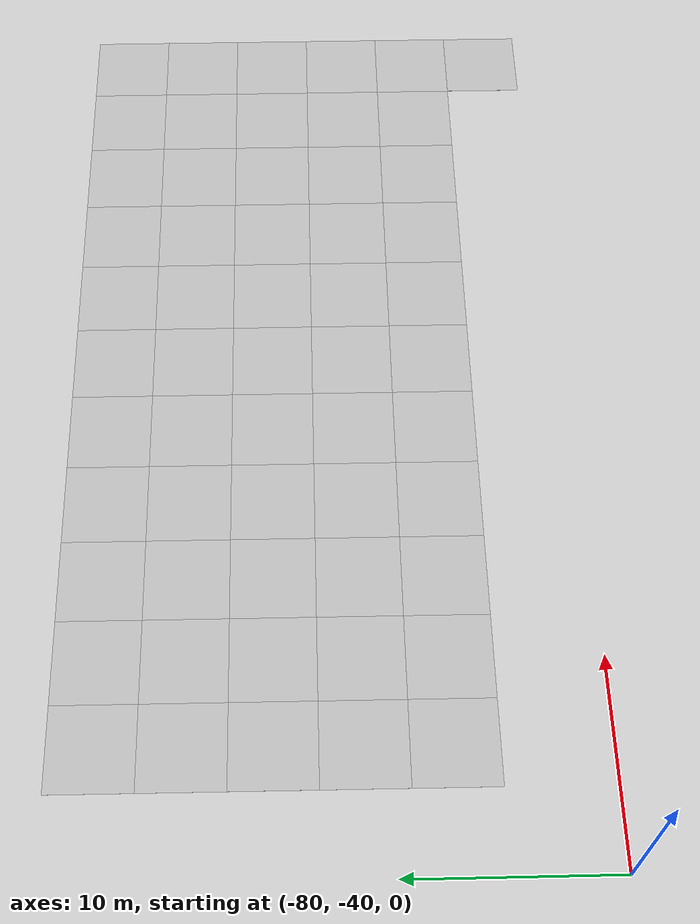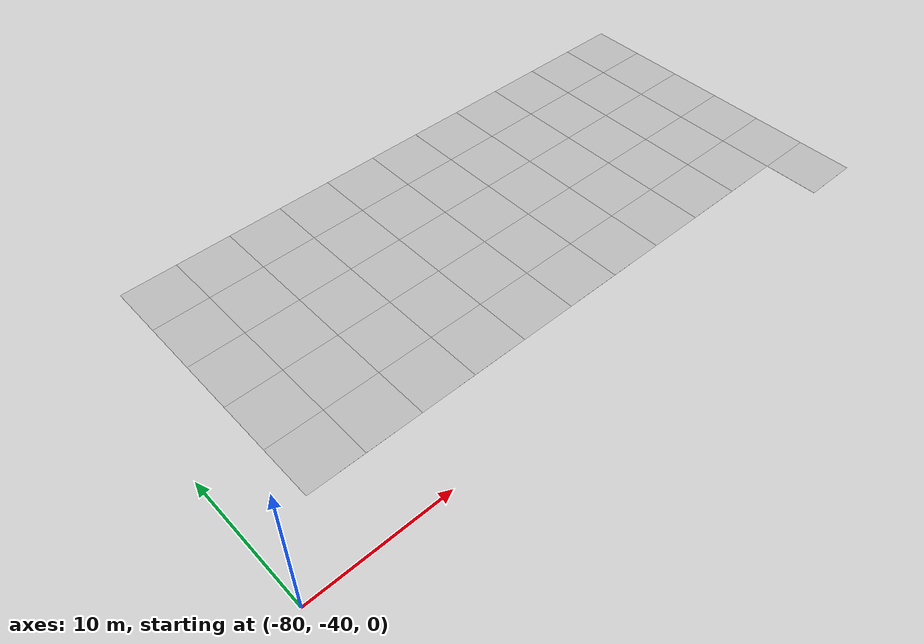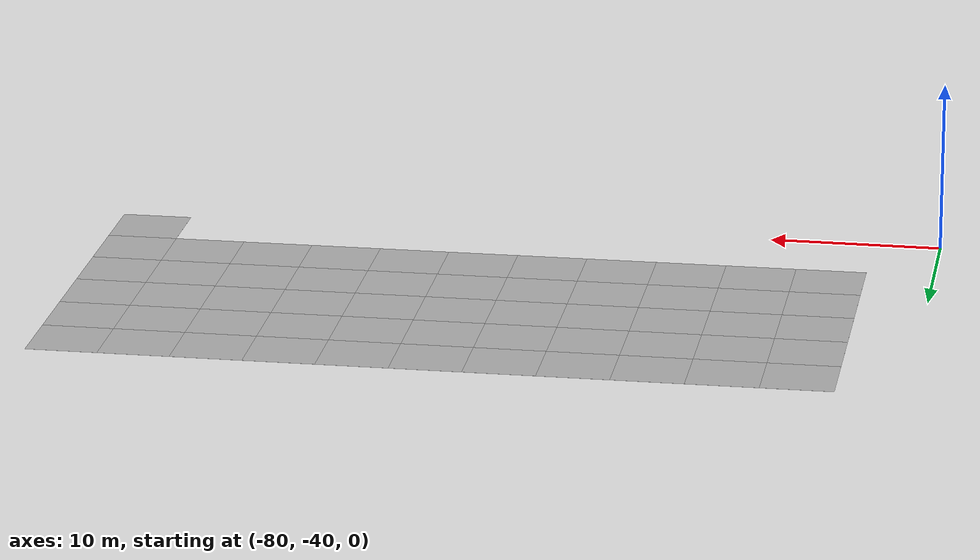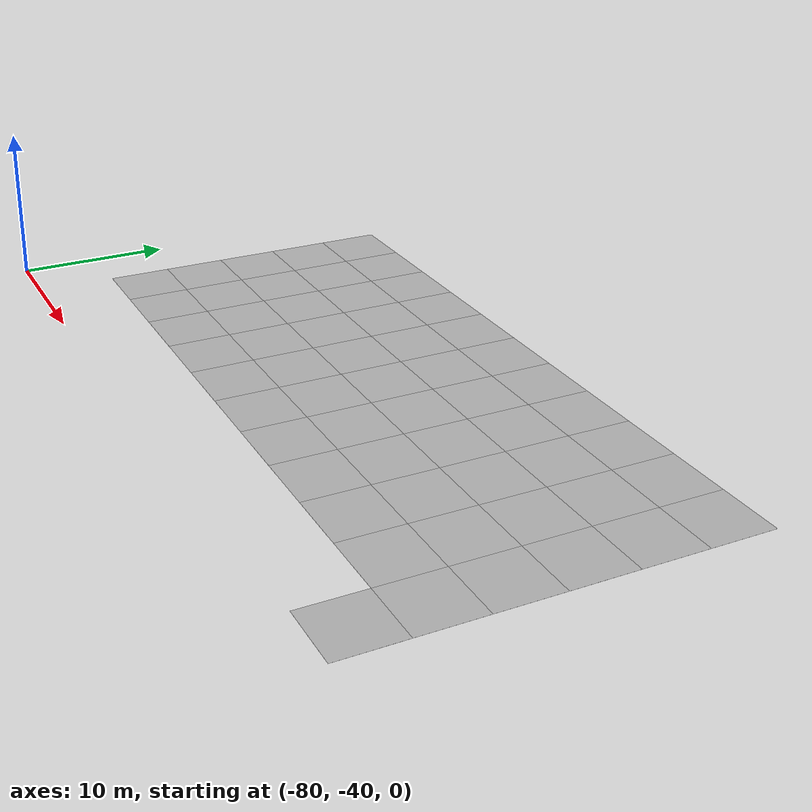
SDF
<sdf version="1.6">
 <world name="default">
  <model name="Tile/0-5">
   <static>1</static>
   <link name="link">
    <collision name="collision">
     <geometry><plane><normal>0 0 1</normal><size>4.096 4.096</size></plane></geometry>
     <surface><friction><ode><mu>100</mu><mu2>50</mu2></ode></friction></surface>
    </collision>
    <visual name="visual">
     <cast_shadows>0</cast_shadows>
     <geometry><plane><normal>0 0 1</normal><size>4.096 4.096</size></plane></geometry>
     <material>
      <script>
       <uri>file://materials/scripts</uri>
       <uri>file://materials/textures</uri>
       <name>Tile/5eab350b8220ac9944dbdfa4ac3288c7c17e24c3bf5df0dfcf6173d64dae00a1</name>
      </script>
     </material>
    </visual>
   </link>
   <pose>-74.02587300576776 -32.81610327529424 0 0 -0 0</pose>
  </model>
  <model name="Tile/0-6">
   <static>1</static>
   <link name="link">
    <collision name="collision">
     <geometry><plane><normal>0 0 1</normal><size>4.096 4.096</size></plane></geometry>
     <surface><friction><ode><mu>100</mu><mu2>50</mu2></ode></friction></surface>
    </collision>
    <visual name="visual">
     <cast_shadows>0</cast_shadows>
     <geometry><plane><normal>0 0 1</normal><size>4.096 4.096</size></plane></geometry>
     <material>
      <script>
       <uri>file://materials/scripts</uri>
       <uri>file://materials/textures</uri>
       <name>Tile/5eab350b8220ac9944dbdfa4ac3288c7c17e24c3bf5df0dfcf6173d64dae00a1</name>
      </script>
     </material>
    </visual>
   </link>
   <pose>-74.02587300576776 -28.72010327529424 0 0 -0 0</pose>
  </model>
  <model name="Tile/0-7">
   <static>1</static>
   <link name="link">
    <collision name="collision">
     <geometry><plane><normal>0 0 1</normal><size>4.096 4.096</size></plane></geometry>
     <surface><friction><ode><mu>100</mu><mu2>50</mu2></ode></friction></surface>
    </collision>
    <visual name="visual">
     <cast_shadows>0</cast_shadows>
     <geometry><plane><normal>0 0 1</normal><size>4.096 4.096</size></plane></geometry>
     <material>
      <script>
       <uri>file://materials/scripts</uri>
       <uri>file://materials/textures</uri>
       <name>Tile/5eab350b8220ac9944dbdfa4ac3288c7c17e24c3bf5df0dfcf6173d64dae00a1</name>
      </script>
     </material>
    </visual>
   </link>
   <pose>-74.02587300576776 -24.62410327529424 0 0 -0 0</pose>
  </model>
  <model name="Tile/0-8">
   <static>1</static>
   <link name="link">
    <collision name="collision">
     <geometry><plane><normal>0 0 1</normal><size>4.096 4.096</size></plane></geometry>
     <surface><friction><ode><mu>100</mu><mu2>50</mu2></ode></friction></surface>
    </collision>
    <visual name="visual">
     <cast_shadows>0</cast_shadows>
     <geometry><plane><normal>0 0 1</normal><size>4.096 4.096</size></plane></geometry>
     <material>
      <script>
       <uri>file://materials/scripts</uri>
       <uri>file://materials/textures</uri>
       <name>Tile/5eab350b8220ac9944dbdfa4ac3288c7c17e24c3bf5df0dfcf6173d64dae00a1</name>
      </script>
     </material>
    </visual>
   </link>
   <pose>-74.02587300576776 -20.528103275294235 0 0 -0 0</pose>
  </model>
  <model name="Tile/0-9">
   <static>1</static>
   <link name="link">
    <collision name="collision">
     <geometry><plane><normal>0 0 1</normal><size>4.096 4.096</size></plane></geometry>
     <surface><friction><ode><mu>100</mu><mu2>50</mu2></ode></friction></surface>
    </collision>
    <visual name="visual">
     <cast_shadows>0</cast_shadows>
     <geometry><plane><normal>0 0 1</normal><size>4.096 4.096</size></plane></geometry>
     <material>
      <script>
       <uri>file://materials/scripts</uri>
       <uri>file://materials/textures</uri>
       <name>Tile/5eab350b8220ac9944dbdfa4ac3288c7c17e24c3bf5df0dfcf6173d64dae00a1</name>
      </script>
     </material>
    </visual>
   </link>
   <pose>-74.02587300576776 -16.43210327529424 0 0 -0 0</pose>
  </model>
  <model name="Tile/1-5">
   <static>1</static>
   <link name="link">
    <collision name="collision">
     <geometry><plane><normal>0 0 1</normal><size>4.096 4.096</size></plane></geometry>
     <surface><friction><ode><mu>100</mu><mu2>50</mu2></ode></friction></surface>
    </collision>
    <visual name="visual">
     <cast_shadows>0</cast_shadows>
     <geometry><plane><normal>0 0 1</normal><size>4.096 4.096</size></plane></geometry>
     <material>
      <script>
       <uri>file://materials/scripts</uri>
       <uri>file://materials/textures</uri>
       <name>Tile/bef20f82cdd3d5baccce5dc0a13bc71e3c4d3d878aea6c0974d6655b88d51603</name>
      </script>
     </material>
    </visual>
   </link>
   <pose>-69.92987300576776 -32.81610327529424 0 0 -0 0</pose>
  </model>
  <model name="Tile/1-6">
   <static>1</static>
   <link name="link">
    <collision name="collision">
     <geometry><plane><normal>0 0 1</normal><size>4.096 4.096</size></plane></geometry>
     <surface><friction><ode><mu>100</mu><mu2>50</mu2></ode></friction></surface>
    </collision>
    <visual name="visual">
     <cast_shadows>0</cast_shadows>
     <geometry><plane><normal>0 0 1</normal><size>4.096 4.096</size></plane></geometry>
     <material>
      <script>
       <uri>file://materials/scripts</uri>
       <uri>file://materials/textures</uri>
       <name>Tile/5eab350b8220ac9944dbdfa4ac3288c7c17e24c3bf5df0dfcf6173d64dae00a1</name>
      </script>
     </material>
    </visual>
   </link>
   <pose>-69.92987300576776 -28.72010327529424 0 0 -0 0</pose>
  </model>
  <model name="Tile/1-7">
   <static>1</static>
   <link name="link">
    <collision name="collision">
     <geometry><plane><normal>0 0 1</normal><size>4.096 4.096</size></plane></geometry>
     <surface><friction><ode><mu>100</mu><mu2>50</mu2></ode></friction></surface>
    </collision>
    <visual name="visual">
     <cast_shadows>0</cast_shadows>
     <geometry><plane><normal>0 0 1</normal><size>4.096 4.096</size></plane></geometry>
     <material>
      <script>
       <uri>file://materials/scripts</uri>
       <uri>file://materials/textures</uri>
       <name>Tile/5eab350b8220ac9944dbdfa4ac3288c7c17e24c3bf5df0dfcf6173d64dae00a1</name>
      </script>
     </material>
    </visual>
   </link>
   <pose>-69.92987300576776 -24.62410327529424 0 0 -0 0</pose>
  </model>
  <model name="Tile/1-8">
   <static>1</static>
   <link name="link">
    <collision name="collision">
     <geometry><plane><normal>0 0 1</normal><size>4.096 4.096</size></plane></geometry>
     <surface><friction><ode><mu>100</mu><mu2>50</mu2></ode></friction></surface>
    </collision>
    <visual name="visual">
     <cast_shadows>0</cast_shadows>
     <geometry><plane><normal>0 0 1</normal><size>4.096 4.096</size></plane></geometry>
     <material>
      <script>
       <uri>file://materials/scripts</uri>
       <uri>file://materials/textures</uri>
       <name>Tile/5eab350b8220ac9944dbdfa4ac3288c7c17e24c3bf5df0dfcf6173d64dae00a1</name>
      </script>
     </material>
    </visual>
   </link>
   <pose>-69.92987300576776 -20.528103275294235 0 0 -0 0</pose>
  </model>
  <model name="Tile/1-9">
   <static>1</static>
   <link name="link">
    <collision name="collision">
     <geometry><plane><normal>0 0 1</normal><size>4.096 4.096</size></plane></geometry>
     <surface><friction><ode><mu>100</mu><mu2>50</mu2></ode></friction></surface>
    </collision>
    <visual name="visual">
     <cast_shadows>0</cast_shadows>
     <geometry><plane><normal>0 0 1</normal><size>4.096 4.096</size></plane></geometry>
     <material>
      <script>
       <uri>file://materials/scripts</uri>
       <uri>file://materials/textures</uri>
       <name>Tile/5eab350b8220ac9944dbdfa4ac3288c7c17e24c3bf5df0dfcf6173d64dae00a1</name>
      </script>
     </material>
    </visual>
   </link>
   <pose>-69.92987300576776 -16.43210327529424 0 0 -0 0</pose>
  </model>
  <model name="Tile/2-5">
   <static>1</static>
   <link name="link">
    <collision name="collision">
     <geometry><plane><normal>0 0 1</normal><size>4.096 4.096</size></plane></geometry>
     <surface><friction><ode><mu>100</mu><mu2>50</mu2></ode></friction></surface>
    </collision>
    <visual name="visual">
     <cast_shadows>0</cast_shadows>
     <geometry><plane><normal>0 0 1</normal><size>4.096 4.096</size></plane></geometry>
     <material>
      <script>
       <uri>file://materials/scripts</uri>
       <uri>file://materials/textures</uri>
       <name>Tile/518b6961bb547202fd9efee7bd81965970aacfd3aa863cbcab949c5f7947569b</name>
      </script>
     </material>
    </visual>
   </link>
   <pose>-65.83387300576777 -32.81610327529424 0 0 -0 0</pose>
  </model>
  <model name="Tile/2-6">
   <static>1</static>
   <link name="link">
    <collision name="collision">
     <geometry><plane><normal>0 0 1</normal><size>4.096 4.096</size></plane></geometry>
     <surface><friction><ode><mu>100</mu><mu2>50</mu2></ode></friction></surface>
    </collision>
    <visual name="visual">
     <cast_shadows>0</cast_shadows>
     <geometry><plane><normal>0 0 1</normal><size>4.096 4.096</size></plane></geometry>
     <material>
      <script>
       <uri>file://materials/scripts</uri>
       <uri>file://materials/textures</uri>
       <name>Tile/5cfcbd6f833b705bda2c2ba7dccb202738695a96687d2659ea9c212d299d7115</name>
      </script>
     </material>
    </visual>
   </link>
   <pose>-65.83387300576777 -28.72010327529424 0 0 -0 0</pose>
  </model>
  <model name="Tile/2-7">
   <static>1</static>
   <link name="link">
    <collision name="collision">
     <geometry><plane><normal>0 0 1</normal><size>4.096 4.096</size></plane></geometry>
     <surface><friction><ode><mu>100</mu><mu2>50</mu2></ode></friction></surface>
    </collision>
    <visual name="visual">
     <cast_shadows>0</cast_shadows>
     <geometry><plane><normal>0 0 1</normal><size>4.096 4.096</size></plane></geometry>
     <material>
      <script>
       <uri>file://materials/scripts</uri>
       <uri>file://materials/textures</uri>
       <name>Tile/245a53eaf3db409cd6b239ef844614c21767c09347fcd66d938a2f493ae21ebe</name>
      </script>
     </material>
    </visual>
   </link>
   <pose>-65.83387300576777 -24.62410327529424 0 0 -0 0</pose>
  </model>
  <model name="Tile/2-8">
   <static>1</static>
   <link name="link">
    <collision name="collision">
     <geometry><plane><normal>0 0 1</normal><size>4.096 4.096</size></plane></geometry>
     <surface><friction><ode><mu>100</mu><mu2>50</mu2></ode></friction></surface>
    </collision>
    <visual name="visual">
     <cast_shadows>0</cast_shadows>
     <geometry><plane><normal>0 0 1</normal><size>4.096 4.096</size></plane></geometry>
     <material>
      <script>
       <uri>file://materials/scripts</uri>
       <uri>file://materials/textures</uri>
       <name>Tile/5eab350b8220ac9944dbdfa4ac3288c7c17e24c3bf5df0dfcf6173d64dae00a1</name>
      </script>
     </material>
    </visual>
   </link>
   <pose>-65.83387300576777 -20.528103275294235 0 0 -0 0</pose>
  </model>
  <model name="Tile/2-9">
   <static>1</static>
   <link name="link">
    <collision name="collision">
     <geometry><plane><normal>0 0 1</normal><size>4.096 4.096</size></plane></geometry>
     <surface><friction><ode><mu>100</mu><mu2>50</mu2></ode></friction></surface>
    </collision>
    <visual name="visual">
     <cast_shadows>0</cast_shadows>
     <geometry><plane><normal>0 0 1</normal><size>4.096 4.096</size></plane></geometry>
     <material>
      <script>
       <uri>file://materials/scripts</uri>
       <uri>file://materials/textures</uri>
       <name>Tile/5eab350b8220ac9944dbdfa4ac3288c7c17e24c3bf5df0dfcf6173d64dae00a1</name>
      </script>
     </material>
    </visual>
   </link>
   <pose>-65.83387300576777 -16.43210327529424 0 0 -0 0</pose>
  </model>
  <model name="Tile/3-5">
   <static>1</static>
   <link name="link">
    <collision name="collision">
     <geometry><plane><normal>0 0 1</normal><size>4.096 4.096</size></plane></geometry>
     <surface><friction><ode><mu>100</mu><mu2>50</mu2></ode></friction></surface>
    </collision>
    <visual name="visual">
     <cast_shadows>0</cast_shadows>
     <geometry><plane><normal>0 0 1</normal><size>4.096 4.096</size></plane></geometry>
     <material>
      <script>
       <uri>file://materials/scripts</uri>
       <uri>file://materials/textures</uri>
       <name>Tile/5eab350b8220ac9944dbdfa4ac3288c7c17e24c3bf5df0dfcf6173d64dae00a1</name>
      </script>
     </material>
    </visual>
   </link>
   <pose>-61.73787300576777 -32.81610327529424 0 0 -0 0</pose>
  </model>
  <model name="Tile/3-6">
   <static>1</static>
   <link name="link">
    <collision name="collision">
     <geometry><plane><normal>0 0 1</normal><size>4.096 4.096</size></plane></geometry>
     <surface><friction><ode><mu>100</mu><mu2>50</mu2></ode></friction></surface>
    </collision>
    <visual name="visual">
     <cast_shadows>0</cast_shadows>
     <geometry><plane><normal>0 0 1</normal><size>4.096 4.096</size></plane></geometry>
     <material>
      <script>
       <uri>file://materials/scripts</uri>
       <uri>file://materials/textures</uri>
       <name>Tile/6b770577011c089c4e84eb5bd05d657700045482b5e6fd3c39f7793a9b04bbc1</name>
      </script>
     </material>
    </visual>
   </link>
   <pose>-61.73787300576777 -28.72010327529424 0 0 -0 0</pose>
  </model>
  <model name="Tile/3-7">
   <static>1</static>
   <link name="link">
    <collision name="collision">
     <geometry><plane><normal>0 0 1</normal><size>4.096 4.096</size></plane></geometry>
     <surface><friction><ode><mu>100</mu><mu2>50</mu2></ode></friction></surface>
    </collision>
    <visual name="visual">
     <cast_shadows>0</cast_shadows>
     <geometry><plane><normal>0 0 1</normal><size>4.096 4.096</size></plane></geometry>
     <material>
      <script>
       <uri>file://materials/scripts</uri>
       <uri>file://materials/textures</uri>
       <name>Tile/34a6189ac8d39fd8d3d2dcb4013038d80a6ebc6924422e81d8ef52bbcfac49f7</name>
      </script>
     </material>
    </visual>
   </link>
   <pose>-61.73787300576777 -24.62410327529424 0 0 -0 0</pose>
  </model>
  <model name="Tile/3-8">
   <static>1</static>
   <link name="link">
    <collision name="collision">
     <geometry><plane><normal>0 0 1</normal><size>4.096 4.096</size></plane></geometry>
     <surface><friction><ode><mu>100</mu><mu2>50</mu2></ode></friction></surface>
    </collision>
    <visual name="visual">
     <cast_shadows>0</cast_shadows>
     <geometry><plane><normal>0 0 1</normal><size>4.096 4.096</size></plane></geometry>
     <material>
      <script>
       <uri>file://materials/scripts</uri>
       <uri>file://materials/textures</uri>
       <name>Tile/3c720c26f9521c0b4f141d493ba461cbd7f9d1d3b3fb96bb40d2f167b9510341</name>
      </script>
     </material>
    </visual>
   </link>
   <pose>-61.73787300576777 -20.528103275294235 0 0 -0 0</pose>
  </model>
  <model name="Tile/3-9">
   <static>1</static>
   <link name="link">
    <collision name="collision">
     <geometry><plane><normal>0 0 1</normal><size>4.096 4.096</size></plane></geometry>
     <surface><friction><ode><mu>100</mu><mu2>50</mu2></ode></friction></surface>
    </collision>
    <visual name="visual">
     <cast_shadows>0</cast_shadows>
     <geometry><plane><normal>0 0 1</normal><size>4.096 4.096</size></plane></geometry>
     <material>
      <script>
       <uri>file://materials/scripts</uri>
       <uri>file://materials/textures</uri>
       <name>Tile/5eab350b8220ac9944dbdfa4ac3288c7c17e24c3bf5df0dfcf6173d64dae00a1</name>
      </script>
     </material>
    </visual>
   </link>
   <pose>-61.73787300576777 -16.43210327529424 0 0 -0 0</pose>
  </model>
  <model name="Tile/4-5">
   <static>1</static>
   <link name="link">
    <collision name="collision">
     <geometry><plane><normal>0 0 1</normal><size>4.096 4.096</size></plane></geometry>
     <surface><friction><ode><mu>100</mu><mu2>50</mu2></ode></friction></surface>
    </collision>
    <visual name="visual">
     <cast_shadows>0</cast_shadows>
     <geometry><plane><normal>0 0 1</normal><size>4.096 4.096</size></plane></geometry>
     <material>
      <script>
       <uri>file://materials/scripts</uri>
       <uri>file://materials/textures</uri>
       <name>Tile/5eab350b8220ac9944dbdfa4ac3288c7c17e24c3bf5df0dfcf6173d64dae00a1</name>
      </script>
     </material>
    </visual>
   </link>
   <pose>-57.64187300576776 -32.81610327529424 0 0 -0 0</pose>
  </model>
  <model name="Tile/4-6">
   <static>1</static>
   <link name="link">
    <collision name="collision">
     <geometry><plane><normal>0 0 1</normal><size>4.096 4.096</size></plane></geometry>
     <surface><friction><ode><mu>100</mu><mu2>50</mu2></ode></friction></surface>
    </collision>
    <visual name="visual">
     <cast_shadows>0</cast_shadows>
     <geometry><plane><normal>0 0 1</normal><size>4.096 4.096</size></plane></geometry>
     <material>
      <script>
       <uri>file://materials/scripts</uri>
       <uri>file://materials/textures</uri>
       <name>Tile/5eab350b8220ac9944dbdfa4ac3288c7c17e24c3bf5df0dfcf6173d64dae00a1</name>
      </script>
     </material>
    </visual>
   </link>
   <pose>-57.64187300576776 -28.72010327529424 0 0 -0 0</pose>
  </model>
  <model name="Tile/4-7">
   <static>1</static>
   <link name="link">
    <collision name="collision">
     <geometry><plane><normal>0 0 1</normal><size>4.096 4.096</size></plane></geometry>
     <surface><friction><ode><mu>100</mu><mu2>50</mu2></ode></friction></surface>
    </collision>
    <visual name="visual">
     <cast_shadows>0</cast_shadows>
     <geometry><plane><normal>0 0 1</normal><size>4.096 4.096</size></plane></geometry>
     <material>
      <script>
       <uri>file://materials/scripts</uri>
       <uri>file://materials/textures</uri>
       <name>Tile/5eab350b8220ac9944dbdfa4ac3288c7c17e24c3bf5df0dfcf6173d64dae00a1</name>
      </script>
     </material>
    </visual>
   </link>
   <pose>-57.64187300576776 -24.62410327529424 0 0 -0 0</pose>
  </model>
  <model name="Tile/4-8">
   <static>1</static>
   <link name="link">
    <collision name="collision">
     <geometry><plane><normal>0 0 1</normal><size>4.096 4.096</size></plane></geometry>
     <surface><friction><ode><mu>100</mu><mu2>50</mu2></ode></friction></surface>
    </collision>
    <visual name="visual">
     <cast_shadows>0</cast_shadows>
     <geometry><plane><normal>0 0 1</normal><size>4.096 4.096</size></plane></geometry>
     <material>
      <script>
       <uri>file://materials/scripts</uri>
       <uri>file://materials/textures</uri>
       <name>Tile/257003cc4d9d59eb855dba1a593f6e13bb0672be1b6eb3444d9a669a07a19780</name>
      </script>
     </material>
    </visual>
   </link>
   <pose>-57.64187300576776 -20.528103275294235 0 0 -0 0</pose>
  </model>
  <model name="Tile/4-9">
   <static>1</static>
   <link name="link">
    <collision name="collision">
     <geometry><plane><normal>0 0 1</normal><size>4.096 4.096</size></plane></geometry>
     <surface><friction><ode><mu>100</mu><mu2>50</mu2></ode></friction></surface>
    </collision>
    <visual name="visual">
     <cast_shadows>0</cast_shadows>
     <geometry><plane><normal>0 0 1</normal><size>4.096 4.096</size></plane></geometry>
     <material>
      <script>
       <uri>file://materials/scripts</uri>
       <uri>file://materials/textures</uri>
       <name>Tile/df8fdec2a40b22a03987a98c70c392184738e617aff91055d1802ed4957272be</name>
      </script>
     </material>
    </visual>
   </link>
   <pose>-57.64187300576776 -16.43210327529424 0 0 -0 0</pose>
  </model>
  <model name="Tile/5-5">
   <static>1</static>
   <link name="link">
    <collision name="collision">
     <geometry><plane><normal>0 0 1</normal><size>4.096 4.096</size></plane></geometry>
     <surface><friction><ode><mu>100</mu><mu2>50</mu2></ode></friction></surface>
    </collision>
    <visual name="visual">
     <cast_shadows>0</cast_shadows>
     <geometry><plane><normal>0 0 1</normal><size>4.096 4.096</size></plane></geometry>
     <material>
      <script>
       <uri>file://materials/scripts</uri>
       <uri>file://materials/textures</uri>
       <name>Tile/5eab350b8220ac9944dbdfa4ac3288c7c17e24c3bf5df0dfcf6173d64dae00a1</name>
      </script>
     </material>
    </visual>
   </link>
   <pose>-53.54587300576777 -32.81610327529424 0 0 -0 0</pose>
  </model>
  <model name="Tile/5-6">
   <static>1</static>
   <link name="link">
    <collision name="collision">
     <geometry><plane><normal>0 0 1</normal><size>4.096 4.096</size></plane></geometry>
     <surface><friction><ode><mu>100</mu><mu2>50</mu2></ode></friction></surface>
    </collision>
    <visual name="visual">
     <cast_shadows>0</cast_shadows>
     <geometry><plane><normal>0 0 1</normal><size>4.096 4.096</size></plane></geometry>
     <material>
      <script>
       <uri>file://materials/scripts</uri>
       <uri>file://materials/textures</uri>
       <name>Tile/5eab350b8220ac9944dbdfa4ac3288c7c17e24c3bf5df0dfcf6173d64dae00a1</name>
      </script>
     </material>
    </visual>
   </link>
   <pose>-53.54587300576777 -28.72010327529424 0 0 -0 0</pose>
  </model>
  <model name="Tile/5-7">
   <static>1</static>
   <link name="link">
    <collision name="collision">
     <geometry><plane><normal>0 0 1</normal><size>4.096 4.096</size></plane></geometry>
     <surface><friction><ode><mu>100</mu><mu2>50</mu2></ode></friction></surface>
    </collision>
    <visual name="visual">
     <cast_shadows>0</cast_shadows>
     <geometry><plane><normal>0 0 1</normal><size>4.096 4.096</size></plane></geometry>
     <material>
      <script>
       <uri>file://materials/scripts</uri>
       <uri>file://materials/textures</uri>
       <name>Tile/5eab350b8220ac9944dbdfa4ac3288c7c17e24c3bf5df0dfcf6173d64dae00a1</name>
      </script>
     </material>
    </visual>
   </link>
   <pose>-53.54587300576777 -24.62410327529424 0 0 -0 0</pose>
  </model>
  <model name="Tile/5-8">
   <static>1</static>
   <link name="link">
    <collision name="collision">
     <geometry><plane><normal>0 0 1</normal><size>4.096 4.096</size></plane></geometry>
     <surface><friction><ode><mu>100</mu><mu2>50</mu2></ode></friction></surface>
    </collision>
    <visual name="visual">
     <cast_shadows>0</cast_shadows>
     <geometry><plane><normal>0 0 1</normal><size>4.096 4.096</size></plane></geometry>
     <material>
      <script>
       <uri>file://materials/scripts</uri>
       <uri>file://materials/textures</uri>
       <name>Tile/c538d90ff08106b9bb66fdeee04f00c9e2af0226b396c58ec03e15e4201825c3</name>
      </script>
     </material>
    </visual>
   </link>
   <pose>-53.54587300576777 -20.528103275294235 0 0 -0 0</pose>
  </model>
  <model name="Tile/5-9">
   <static>1</static>
   <link name="link">
    <collision name="collision">
     <geometry><plane><normal>0 0 1</normal><size>4.096 4.096</size></plane></geometry>
     <surface><friction><ode><mu>100</mu><mu2>50</mu2></ode></friction></surface>
    </collision>
    <visual name="visual">
     <cast_shadows>0</cast_shadows>
     <geometry><plane><normal>0 0 1</normal><size>4.096 4.096</size></plane></geometry>
     <material>
      <script>
       <uri>file://materials/scripts</uri>
       <uri>file://materials/textures</uri>
       <name>Tile/1b7abc5ec8e43252bd58a2f95dc8a86b00fa6089cdce2c2c352a40f76eff3595</name>
      </script>
     </material>
    </visual>
   </link>
   <pose>-53.54587300576777 -16.43210327529424 0 0 -0 0</pose>
  </model>
  <model name="Tile/6-5">
   <static>1</static>
   <link name="link">
    <collision name="collision">
     <geometry><plane><normal>0 0 1</normal><size>4.096 4.096</size></plane></geometry>
     <surface><friction><ode><mu>100</mu><mu2>50</mu2></ode></friction></surface>
    </collision>
    <visual name="visual">
     <cast_shadows>0</cast_shadows>
     <geometry><plane><normal>0 0 1</normal><size>4.096 4.096</size></plane></geometry>
     <material>
      <script>
       <uri>file://materials/scripts</uri>
       <uri>file://materials/textures</uri>
       <name>Tile/5eab350b8220ac9944dbdfa4ac3288c7c17e24c3bf5df0dfcf6173d64dae00a1</name>
      </script>
     </material>
    </visual>
   </link>
   <pose>-49.44987300576777 -32.81610327529424 0 0 -0 0</pose>
  </model>
  <model name="Tile/6-6">
   <static>1</static>
   <link name="link">
    <collision name="collision">
     <geometry><plane><normal>0 0 1</normal><size>4.096 4.096</size></plane></geometry>
     <surface><friction><ode><mu>100</mu><mu2>50</mu2></ode></friction></surface>
    </collision>
    <visual name="visual">
     <cast_shadows>0</cast_shadows>
     <geometry><plane><normal>0 0 1</normal><size>4.096 4.096</size></plane></geometry>
     <material>
      <script>
       <uri>file://materials/scripts</uri>
       <uri>file://materials/textures</uri>
       <name>Tile/5eab350b8220ac9944dbdfa4ac3288c7c17e24c3bf5df0dfcf6173d64dae00a1</name>
      </script>
     </material>
    </visual>
   </link>
   <pose>-49.44987300576777 -28.72010327529424 0 0 -0 0</pose>
  </model>
  <model name="Tile/6-7">
   <static>1</static>
   <link name="link">
    <collision name="collision">
     <geometry><plane><normal>0 0 1</normal><size>4.096 4.096</size></plane></geometry>
     <surface><friction><ode><mu>100</mu><mu2>50</mu2></ode></friction></surface>
    </collision>
    <visual name="visual">
     <cast_shadows>0</cast_shadows>
     <geometry><plane><normal>0 0 1</normal><size>4.096 4.096</size></plane></geometry>
     <material>
      <script>
       <uri>file://materials/scripts</uri>
       <uri>file://materials/textures</uri>
       <name>Tile/5eab350b8220ac9944dbdfa4ac3288c7c17e24c3bf5df0dfcf6173d64dae00a1</name>
      </script>
     </material>
    </visual>
   </link>
   <pose>-49.44987300576777 -24.62410327529424 0 0 -0 0</pose>
  </model>
  <model name="Tile/6-8">
   <static>1</static>
   <link name="link">
    <collision name="collision">
     <geometry><plane><normal>0 0 1</normal><size>4.096 4.096</size></plane></geometry>
     <surface><friction><ode><mu>100</mu><mu2>50</mu2></ode></friction></surface>
    </collision>
    <visual name="visual">
     <cast_shadows>0</cast_shadows>
     <geometry><plane><normal>0 0 1</normal><size>4.096 4.096</size></plane></geometry>
     <material>
      <script>
       <uri>file://materials/scripts</uri>
       <uri>file://materials/textures</uri>
       <name>Tile/5eab350b8220ac9944dbdfa4ac3288c7c17e24c3bf5df0dfcf6173d64dae00a1</name>
      </script>
     </material>
    </visual>
   </link>
   <pose>-49.44987300576777 -20.528103275294235 0 0 -0 0</pose>
  </model>
  <model name="Tile/6-9">
   <static>1</static>
   <link name="link">
    <collision name="collision">
     <geometry><plane><normal>0 0 1</normal><size>4.096 4.096</size></plane></geometry>
     <surface><friction><ode><mu>100</mu><mu2>50</mu2></ode></friction></surface>
    </collision>
    <visual name="visual">
     <cast_shadows>0</cast_shadows>
     <geometry><plane><normal>0 0 1</normal><size>4.096 4.096</size></plane></geometry>
     <material>
      <script>
       <uri>file://materials/scripts</uri>
       <uri>file://materials/textures</uri>
       <name>Tile/5eab350b8220ac9944dbdfa4ac3288c7c17e24c3bf5df0dfcf6173d64dae00a1</name>
      </script>
     </material>
    </visual>
   </link>
   <pose>-49.44987300576777 -16.43210327529424 0 0 -0 0</pose>
  </model>
  <model name="Tile/7-5">
   <static>1</static>
   <link name="link">
    <collision name="collision">
     <geometry><plane><normal>0 0 1</normal><size>4.096 4.096</size></plane></geometry>
     <surface><friction><ode><mu>100</mu><mu2>50</mu2></ode></friction></surface>
    </collision>
    <visual name="visual">
     <cast_shadows>0</cast_shadows>
     <geometry><plane><normal>0 0 1</normal><size>4.096 4.096</size></plane></geometry>
     <material>
      <script>
       <uri>file://materials/scripts</uri>
       <uri>file://materials/textures</uri>
       <name>Tile/5eab350b8220ac9944dbdfa4ac3288c7c17e24c3bf5df0dfcf6173d64dae00a1</name>
      </script>
     </material>
    </visual>
   </link>
   <pose>-45.35387300576777 -32.81610327529424 0 0 -0 0</pose>
  </model>
  <model name="Tile/7-6">
   <static>1</static>
   <link name="link">
    <collision name="collision">
     <geometry><plane><normal>0 0 1</normal><size>4.096 4.096</size></plane></geometry>
     <surface><friction><ode><mu>100</mu><mu2>50</mu2></ode></friction></surface>
    </collision>
    <visual name="visual">
     <cast_shadows>0</cast_shadows>
     <geometry><plane><normal>0 0 1</normal><size>4.096 4.096</size></plane></geometry>
     <material>
      <script>
       <uri>file://materials/scripts</uri>
       <uri>file://materials/textures</uri>
       <name>Tile/5eab350b8220ac9944dbdfa4ac3288c7c17e24c3bf5df0dfcf6173d64dae00a1</name>
      </script>
     </material>
    </visual>
   </link>
   <pose>-45.35387300576777 -28.72010327529424 0 0 -0 0</pose>
  </model>
  <model name="Tile/7-7">
   <static>1</static>
   <link name="link">
    <collision name="collision">
     <geometry><plane><normal>0 0 1</normal><size>4.096 4.096</size></plane></geometry>
     <surface><friction><ode><mu>100</mu><mu2>50</mu2></ode></friction></surface>
    </collision>
    <visual name="visual">
     <cast_shadows>0</cast_shadows>
     <geometry><plane><normal>0 0 1</normal><size>4.096 4.096</size></plane></geometry>
     <material>
      <script>
       <uri>file://materials/scripts</uri>
       <uri>file://materials/textures</uri>
       <name>Tile/5eab350b8220ac9944dbdfa4ac3288c7c17e24c3bf5df0dfcf6173d64dae00a1</name>
      </script>
     </material>
    </visual>
   </link>
   <pose>-45.35387300576777 -24.62410327529424 0 0 -0 0</pose>
  </model>
  <model name="Tile/7-8">
   <static>1</static>
   <link name="link">
    <collision name="collision">
     <geometry><plane><normal>0 0 1</normal><size>4.096 4.096</size></plane></geometry>
     <surface><friction><ode><mu>100</mu><mu2>50</mu2></ode></friction></surface>
    </collision>
    <visual name="visual">
     <cast_shadows>0</cast_shadows>
     <geometry><plane><normal>0 0 1</normal><size>4.096 4.096</size></plane></geometry>
     <material>
      <script>
       <uri>file://materials/scripts</uri>
       <uri>file://materials/textures</uri>
       <name>Tile/5eab350b8220ac9944dbdfa4ac3288c7c17e24c3bf5df0dfcf6173d64dae00a1</name>
      </script>
     </material>
    </visual>
   </link>
   <pose>-45.35387300576777 -20.528103275294235 0 0 -0 0</pose>
  </model>
  <model name="Tile/7-9">
   <static>1</static>
   <link name="link">
    <collision name="collision">
     <geometry><plane><normal>0 0 1</normal><size>4.096 4.096</size></plane></geometry>
     <surface><friction><ode><mu>100</mu><mu2>50</mu2></ode></friction></surface>
    </collision>
    <visual name="visual">
     <cast_shadows>0</cast_shadows>
     <geometry><plane><normal>0 0 1</normal><size>4.096 4.096</size></plane></geometry>
     <material>
      <script>
       <uri>file://materials/scripts</uri>
       <uri>file://materials/textures</uri>
       <name>Tile/5eab350b8220ac9944dbdfa4ac3288c7c17e24c3bf5df0dfcf6173d64dae00a1</name>
      </script>
     </material>
    </visual>
   </link>
   <pose>-45.35387300576777 -16.43210327529424 0 0 -0 0</pose>
  </model>
  <model name="Tile/8-5">
   <static>1</static>
   <link name="link">
    <collision name="collision">
     <geometry><plane><normal>0 0 1</normal><size>4.096 4.096</size></plane></geometry>
     <surface><friction><ode><mu>100</mu><mu2>50</mu2></ode></friction></surface>
    </collision>
    <visual name="visual">
     <cast_shadows>0</cast_shadows>
     <geometry><plane><normal>0 0 1</normal><size>4.096 4.096</size></plane></geometry>
     <material>
      <script>
       <uri>file://materials/scripts</uri>
       <uri>file://materials/textures</uri>
       <name>Tile/5eab350b8220ac9944dbdfa4ac3288c7c17e24c3bf5df0dfcf6173d64dae00a1</name>
      </script>
     </material>
    </visual>
   </link>
   <pose>-41.25787300576776 -32.81610327529424 0 0 -0 0</pose>
  </model>
  <model name="Tile/8-6">
   <static>1</static>
   <link name="link">
    <collision name="collision">
     <geometry><plane><normal>0 0 1</normal><size>4.096 4.096</size></plane></geometry>
     <surface><friction><ode><mu>100</mu><mu2>50</mu2></ode></friction></surface>
    </collision>
    <visual name="visual">
     <cast_shadows>0</cast_shadows>
     <geometry><plane><normal>0 0 1</normal><size>4.096 4.096</size></plane></geometry>
     <material>
      <script>
       <uri>file://materials/scripts</uri>
       <uri>file://materials/textures</uri>
       <name>Tile/5eab350b8220ac9944dbdfa4ac3288c7c17e24c3bf5df0dfcf6173d64dae00a1</name>
      </script>
     </material>
    </visual>
   </link>
   <pose>-41.25787300576776 -28.72010327529424 0 0 -0 0</pose>
  </model>
  <model name="Tile/8-7">
   <static>1</static>
   <link name="link">
    <collision name="collision">
     <geometry><plane><normal>0 0 1</normal><size>4.096 4.096</size></plane></geometry>
     <surface><friction><ode><mu>100</mu><mu2>50</mu2></ode></friction></surface>
    </collision>
    <visual name="visual">
     <cast_shadows>0</cast_shadows>
     <geometry><plane><normal>0 0 1</normal><size>4.096 4.096</size></plane></geometry>
     <material>
      <script>
       <uri>file://materials/scripts</uri>
       <uri>file://materials/textures</uri>
       <name>Tile/5eab350b8220ac9944dbdfa4ac3288c7c17e24c3bf5df0dfcf6173d64dae00a1</name>
      </script>
     </material>
    </visual>
   </link>
   <pose>-41.25787300576776 -24.62410327529424 0 0 -0 0</pose>
  </model>
  <model name="Tile/8-8">
   <static>1</static>
   <link name="link">
    <collision name="collision">
     <geometry><plane><normal>0 0 1</normal><size>4.096 4.096</size></plane></geometry>
     <surface><friction><ode><mu>100</mu><mu2>50</mu2></ode></friction></surface>
    </collision>
    <visual name="visual">
     <cast_shadows>0</cast_shadows>
     <geometry><plane><normal>0 0 1</normal><size>4.096 4.096</size></plane></geometry>
     <material>
      <script>
       <uri>file://materials/scripts</uri>
       <uri>file://materials/textures</uri>
       <name>Tile/5eab350b8220ac9944dbdfa4ac3288c7c17e24c3bf5df0dfcf6173d64dae00a1</name>
      </script>
     </material>
    </visual>
   </link>
   <pose>-41.25787300576776 -20.528103275294235 0 0 -0 0</pose>
  </model>
  <model name="Tile/8-9">
   <static>1</static>
   <link name="link">
    <collision name="collision">
     <geometry><plane><normal>0 0 1</normal><size>4.096 4.096</size></plane></geometry>
     <surface><friction><ode><mu>100</mu><mu2>50</mu2></ode></friction></surface>
    </collision>
    <visual name="visual">
     <cast_shadows>0</cast_shadows>
     <geometry><plane><normal>0 0 1</normal><size>4.096 4.096</size></plane></geometry>
     <material>
      <script>
       <uri>file://materials/scripts</uri>
       <uri>file://materials/textures</uri>
       <name>Tile/5eab350b8220ac9944dbdfa4ac3288c7c17e24c3bf5df0dfcf6173d64dae00a1</name>
      </script>
     </material>
    </visual>
   </link>
   <pose>-41.25787300576776 -16.43210327529424 0 0 -0 0</pose>
  </model>
  <model name="Tile/9-5">
   <static>1</static>
   <link name="link">
    <collision name="collision">
     <geometry><plane><normal>0 0 1</normal><size>4.096 4.096</size></plane></geometry>
     <surface><friction><ode><mu>100</mu><mu2>50</mu2></ode></friction></surface>
    </collision>
    <visual name="visual">
     <cast_shadows>0</cast_shadows>
     <geometry><plane><normal>0 0 1</normal><size>4.096 4.096</size></plane></geometry>
     <material>
      <script>
       <uri>file://materials/scripts</uri>
       <uri>file://materials/textures</uri>
       <name>Tile/5eab350b8220ac9944dbdfa4ac3288c7c17e24c3bf5df0dfcf6173d64dae00a1</name>
      </script>
     </material>
    </visual>
   </link>
   <pose>-37.16187300576777 -32.81610327529424 0 0 -0 0</pose>
  </model>
  <model name="Tile/9-6">
   <static>1</static>
   <link name="link">
    <collision name="collision">
     <geometry><plane><normal>0 0 1</normal><size>4.096 4.096</size></plane></geometry>
     <surface><friction><ode><mu>100</mu><mu2>50</mu2></ode></friction></surface>
    </collision>
    <visual name="visual">
     <cast_shadows>0</cast_shadows>
     <geometry><plane><normal>0 0 1</normal><size>4.096 4.096</size></plane></geometry>
     <material>
      <script>
       <uri>file://materials/scripts</uri>
       <uri>file://materials/textures</uri>
       <name>Tile/5eab350b8220ac9944dbdfa4ac3288c7c17e24c3bf5df0dfcf6173d64dae00a1</name>
      </script>
     </material>
    </visual>
   </link>
   <pose>-37.16187300576777 -28.72010327529424 0 0 -0 0</pose>
  </model>
  <model name="Tile/9-7">
   <static>1</static>
   <link name="link">
    <collision name="collision">
     <geometry><plane><normal>0 0 1</normal><size>4.096 4.096</size></plane></geometry>
     <surface><friction><ode><mu>100</mu><mu2>50</mu2></ode></friction></surface>
    </collision>
    <visual name="visual">
     <cast_shadows>0</cast_shadows>
     <geometry><plane><normal>0 0 1</normal><size>4.096 4.096</size></plane></geometry>
     <material>
      <script>
       <uri>file://materials/scripts</uri>
       <uri>file://materials/textures</uri>
       <name>Tile/5eab350b8220ac9944dbdfa4ac3288c7c17e24c3bf5df0dfcf6173d64dae00a1</name>
      </script>
     </material>
    </visual>
   </link>
   <pose>-37.16187300576777 -24.62410327529424 0 0 -0 0</pose>
  </model>
  <model name="Tile/9-8">
   <static>1</static>
   <link name="link">
    <collision name="collision">
     <geometry><plane><normal>0 0 1</normal><size>4.096 4.096</size></plane></geometry>
     <surface><friction><ode><mu>100</mu><mu2>50</mu2></ode></friction></surface>
    </collision>
    <visual name="visual">
     <cast_shadows>0</cast_shadows>
     <geometry><plane><normal>0 0 1</normal><size>4.096 4.096</size></plane></geometry>
     <material>
      <script>
       <uri>file://materials/scripts</uri>
       <uri>file://materials/textures</uri>
       <name>Tile/5eab350b8220ac9944dbdfa4ac3288c7c17e24c3bf5df0dfcf6173d64dae00a1</name>
      </script>
     </material>
    </visual>
   </link>
   <pose>-37.16187300576777 -20.528103275294235 0 0 -0 0</pose>
  </model>
  <model name="Tile/9-9">
   <static>1</static>
   <link name="link">
    <collision name="collision">
     <geometry><plane><normal>0 0 1</normal><size>4.096 4.096</size></plane></geometry>
     <surface><friction><ode><mu>100</mu><mu2>50</mu2></ode></friction></surface>
    </collision>
    <visual name="visual">
     <cast_shadows>0</cast_shadows>
     <geometry><plane><normal>0 0 1</normal><size>4.096 4.096</size></plane></geometry>
     <material>
      <script>
       <uri>file://materials/scripts</uri>
       <uri>file://materials/textures</uri>
       <name>Tile/5eab350b8220ac9944dbdfa4ac3288c7c17e24c3bf5df0dfcf6173d64dae00a1</name>
      </script>
     </material>
    </visual>
   </link>
   <pose>-37.16187300576777 -16.43210327529424 0 0 -0 0</pose>
  </model>
  <model name="Tile/10-4">
   <static>1</static>
   <link name="link">
    <collision name="collision">
     <geometry><plane><normal>0 0 1</normal><size>4.096 4.096</size></plane></geometry>
     <surface><friction><ode><mu>100</mu><mu2>50</mu2></ode></friction></surface>
    </collision>
    <visual name="visual">
     <cast_shadows>0</cast_shadows>
     <geometry><plane><normal>0 0 1</normal><size>4.096 4.096</size></plane></geometry>
     <material>
      <script>
       <uri>file://materials/scripts</uri>
       <uri>file://materials/textures</uri>
       <name>Tile/5eab350b8220ac9944dbdfa4ac3288c7c17e24c3bf5df0dfcf6173d64dae00a1</name>
      </script>
     </material>
    </visual>
   </link>
   <pose>-33.06587300576776 -36.91210327529424 0 0 -0 0</pose>
  </model>
  <model name="Tile/10-5">
   <static>1</static>
   <link name="link">
    <collision name="collision">
     <geometry><plane><normal>0 0 1</normal><size>4.096 4.096</size></plane></geometry>
     <surface><friction><ode><mu>100</mu><mu2>50</mu2></ode></friction></surface>
    </collision>
    <visual name="visual">
     <cast_shadows>0</cast_shadows>
     <geometry><plane><normal>0 0 1</normal><size>4.096 4.096</size></plane></geometry>
     <material>
      <script>
       <uri>file://materials/scripts</uri>
       <uri>file://materials/textures</uri>
       <name>Tile/5eab350b8220ac9944dbdfa4ac3288c7c17e24c3bf5df0dfcf6173d64dae00a1</name>
      </script>
     </material>
    </visual>
   </link>
   <pose>-33.06587300576776 -32.81610327529424 0 0 -0 0</pose>
  </model>
  <model name="Tile/10-6">
   <static>1</static>
   <link name="link">
    <collision name="collision">
     <geometry><plane><normal>0 0 1</normal><size>4.096 4.096</size></plane></geometry>
     <surface><friction><ode><mu>100</mu><mu2>50</mu2></ode></friction></surface>
    </collision>
    <visual name="visual">
     <cast_shadows>0</cast_shadows>
     <geometry><plane><normal>0 0 1</normal><size>4.096 4.096</size></plane></geometry>
     <material>
      <script>
       <uri>file://materials/scripts</uri>
       <uri>file://materials/textures</uri>
       <name>Tile/5eab350b8220ac9944dbdfa4ac3288c7c17e24c3bf5df0dfcf6173d64dae00a1</name>
      </script>
     </material>
    </visual>
   </link>
   <pose>-33.06587300576776 -28.72010327529424 0 0 -0 0</pose>
  </model>
  <model name="Tile/10-7">
   <static>1</static>
   <link name="link">
    <collision name="collision">
     <geometry><plane><normal>0 0 1</normal><size>4.096 4.096</size></plane></geometry>
     <surface><friction><ode><mu>100</mu><mu2>50</mu2></ode></friction></surface>
    </collision>
    <visual name="visual">
     <cast_shadows>0</cast_shadows>
     <geometry><plane><normal>0 0 1</normal><size>4.096 4.096</size></plane></geometry>
     <material>
      <script>
       <uri>file://materials/scripts</uri>
       <uri>file://materials/textures</uri>
       <name>Tile/5eab350b8220ac9944dbdfa4ac3288c7c17e24c3bf5df0dfcf6173d64dae00a1</name>
      </script>
     </material>
    </visual>
   </link>
   <pose>-33.06587300576776 -24.62410327529424 0 0 -0 0</pose>
  </model>
  <model name="Tile/10-8">
   <static>1</static>
   <link name="link">
    <collision name="collision">
     <geometry><plane><normal>0 0 1</normal><size>4.096 4.096</size></plane></geometry>
     <surface><friction><ode><mu>100</mu><mu2>50</mu2></ode></friction></surface>
    </collision>
    <visual name="visual">
     <cast_shadows>0</cast_shadows>
     <geometry><plane><normal>0 0 1</normal><size>4.096 4.096</size></plane></geometry>
     <material>
      <script>
       <uri>file://materials/scripts</uri>
       <uri>file://materials/textures</uri>
       <name>Tile/5eab350b8220ac9944dbdfa4ac3288c7c17e24c3bf5df0dfcf6173d64dae00a1</name>
      </script>
     </material>
    </visual>
   </link>
   <pose>-33.06587300576776 -20.528103275294235 0 0 -0 0</pose>
  </model>
  <model name="Tile/10-9">
   <static>1</static>
   <link name="link">
    <collision name="collision">
     <geometry><plane><normal>0 0 1</normal><size>4.096 4.096</size></plane></geometry>
     <surface><friction><ode><mu>100</mu><mu2>50</mu2></ode></friction></surface>
    </collision>
    <visual name="visual">
     <cast_shadows>0</cast_shadows>
     <geometry><plane><normal>0 0 1</normal><size>4.096 4.096</size></plane></geometry>
     <material>
      <script>
       <uri>file://materials/scripts</uri>
       <uri>file://materials/textures</uri>
       <name>Tile/5eab350b8220ac9944dbdfa4ac3288c7c17e24c3bf5df0dfcf6173d64dae00a1</name>
      </script>
     </material>
    </visual>
   </link>
   <pose>-33.06587300576776 -16.43210327529424 0 0 -0 0</pose>
  </model>
 </world>
</sdf>
